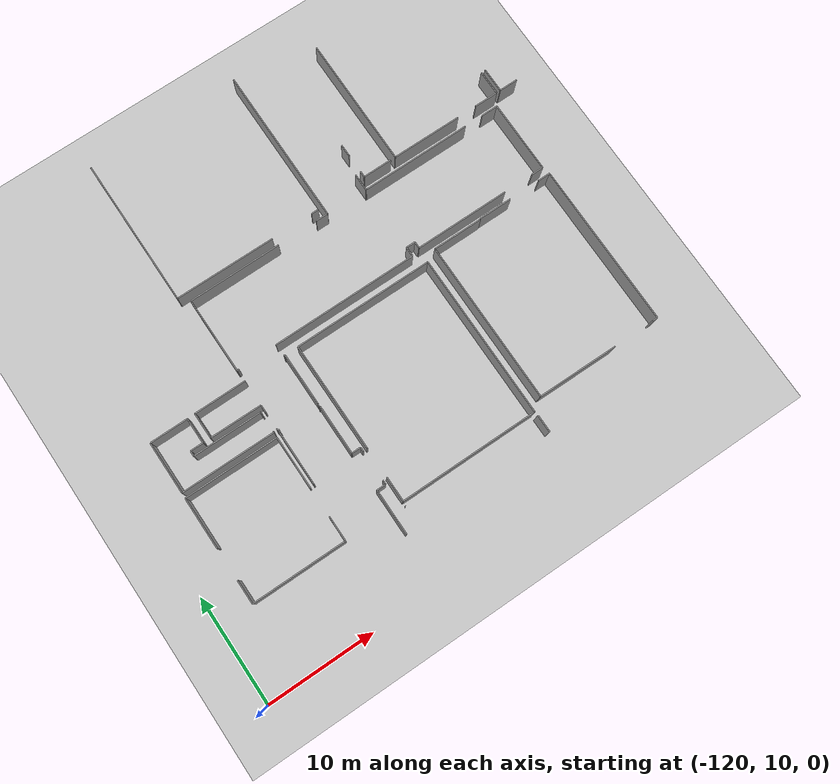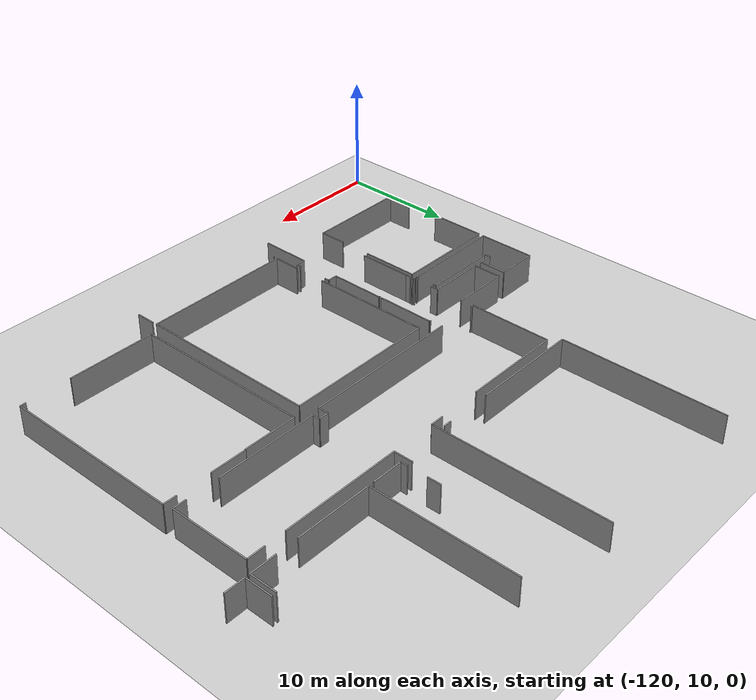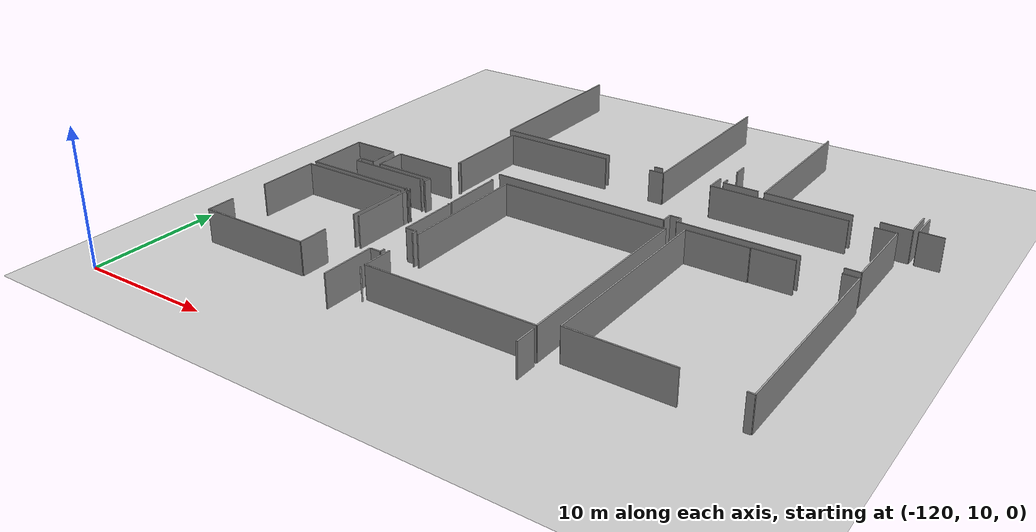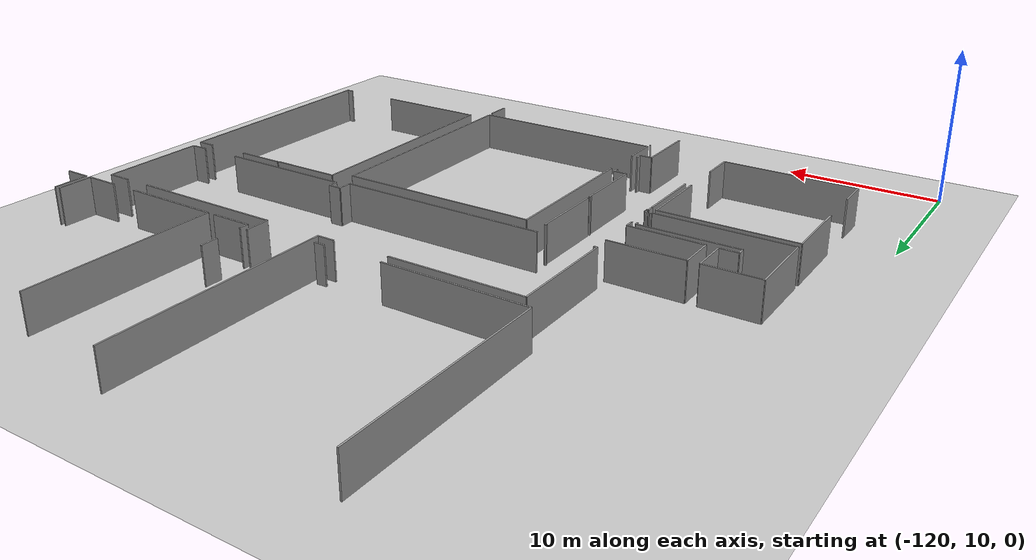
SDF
<sdf version="1.6">
 <world name="default">
  <model name="ground_plane">
   <static>1</static>
   <link name="link">
    <collision name="collision">
     <geometry><plane><normal>0 0 1</normal><size>100 100</size></plane></geometry>
     <surface><friction><ode><mu>100</mu><mu2>50</mu2></ode></friction></surface>
    </collision>
    <visual name="visual">
     <cast_shadows>0</cast_shadows>
     <geometry><plane><normal>0 0 1</normal><size>100 100</size></plane></geometry>
     <material>
      <script><uri>file://media/materials/scripts/gazebo.material</uri><name>Gazebo/Grey</name></script>
     </material>
    </visual>
   </link>
  </model>
  <model name="0510035519_A_40_1_102">
   <static>1</static>
   <link name="Wall_64">
    <collision name="Wall_64_Collision">
     <geometry><box><size>13.7862498411 0.1 2.5</size></box></geometry>
     <pose>6.89312492057 0 1.25 0 0 0</pose>
    </collision>
    <visual name="Wall_64_Visual">
     <pose>6.89312492057 0 1.25 0 0 0</pose>
     <geometry><box><size>13.7862498411 0.1 2.5</size></box></geometry>
     <material>
      <script><uri>file://media/materials/scripts/gazebo.material</uri><name>Gazebo/Grey</name></script>
      <ambient>1 1 1 1</ambient>
     </material>
    </visual>
    <pose>8.18985894014 -27.4416063032 0 0 0 1.57079632679</pose>
   </link>
   <link name="Wall_68">
    <collision name="Wall_68_Collision">
     <geometry><box><size>0.681916380735 0.1 2.5</size></box></geometry>
     <pose>0.340958190367 0 1.25 0 0 0</pose>
    </collision>
    <visual name="Wall_68_Visual">
     <pose>0.340958190367 0 1.25 0 0 0</pose>
     <geometry><box><size>0.681916380735 0.1 2.5</size></box></geometry>
     <material>
      <script><uri>file://media/materials/scripts/gazebo.material</uri><name>Gazebo/Grey</name></script>
      <ambient>1 1 1 1</ambient>
     </material>
    </visual>
    <pose>22.0635404753 -27.4985385691 0 0 0 3.14159265359</pose>
   </link>
   <link name="Wall_69">
    <collision name="Wall_69_Collision">
     <geometry><box><size>9.28089644266 0.1 2.5</size></box></geometry>
     <pose>4.64044822133 0 1.25 0 0 0</pose>
    </collision>
    <visual name="Wall_69_Visual">
     <pose>4.64044822133 0 1.25 0 0 0</pose>
     <geometry><box><size>9.28089644266 0.1 2.5</size></box></geometry>
     <material>
      <script><uri>file://media/materials/scripts/gazebo.material</uri><name>Gazebo/Grey</name></script>
      <ambient>1 1 1 1</ambient>
     </material>
    </visual>
    <pose>17.4705807599 -27.4985385691 0 0 0 3.13545826525</pose>
   </link>
   <link name="Wall_92">
    <collision name="Wall_92_Collision">
     <geometry><box><size>2.69106620918 0.1 2.5</size></box></geometry>
     <pose>1.34553310459 0 1.25 0 0 0</pose>
    </collision>
    <visual name="Wall_92_Visual">
     <pose>1.34553310459 0 1.25 0 0 0</pose>
     <geometry><box><size>2.69106620918 0.1 2.5</size></box></geometry>
     <material>
      <script><uri>file://media/materials/scripts/gazebo.material</uri><name>Gazebo/Grey</name></script>
      <ambient>1 1 1 1</ambient>
     </material>
    </visual>
    <pose>29.5676706062 -27.2514932012 0 0 0 3.14159265359</pose>
   </link>
   <link name="Wall_93">
    <collision name="Wall_93_Collision">
     <geometry><box><size>0.585080696404 0.1 2.5</size></box></geometry>
     <pose>0.292540348202 0 1.25 0 0 0</pose>
    </collision>
    <visual name="Wall_93_Visual">
     <pose>0.292540348202 0 1.25 0 0 0</pose>
     <geometry><box><size>0.585080696404 0.1 2.5</size></box></geometry>
     <material>
      <script><uri>file://media/materials/scripts/gazebo.material</uri><name>Gazebo/Grey</name></script>
      <ambient>1 1 1 1</ambient>
     </material>
    </visual>
    <pose>26.876604397 -27.2514932012 0 0 0 1.57079632679</pose>
   </link>
   <link name="Wall_94">
    <collision name="Wall_94_Collision">
     <geometry><box><size>1.13970960486 0.1 2.5</size></box></geometry>
     <pose>0.569854802431 0 1.25 0 0 0</pose>
    </collision>
    <visual name="Wall_94_Visual">
     <pose>0.569854802431 0 1.25 0 0 0</pose>
     <geometry><box><size>1.13970960486 0.1 2.5</size></box></geometry>
     <material>
      <script><uri>file://media/materials/scripts/gazebo.material</uri><name>Gazebo/Grey</name></script>
      <ambient>1 1 1 1</ambient>
     </material>
    </visual>
    <pose>26.876604397 -24.9830982336 0 0 0 1.57993969375</pose>
   </link>
   <link name="Wall_95">
    <collision name="Wall_95_Collision">
     <geometry><box><size>12.1367391028 0.1 2.5</size></box></geometry>
     <pose>6.0683695514 0 1.25 0 0 0</pose>
    </collision>
    <visual name="Wall_95_Visual">
     <pose>6.0683695514 0 1.25 0 0 0</pose>
     <geometry><box><size>12.1367391028 0.1 2.5</size></box></geometry>
     <material>
      <script><uri>file://media/materials/scripts/gazebo.material</uri><name>Gazebo/Grey</name></script>
      <ambient>1 1 1 1</ambient>
     </material>
    </visual>
    <pose>30.046257466 -27.2578472487 0 0 0 1.57079632679</pose>
   </link>
   <link name="Wall_99">
    <collision name="Wall_99_Collision">
     <geometry><box><size>2.25492438683 0.1 2.5</size></box></geometry>
     <pose>1.12746219342 0 1.25 0 0 0</pose>
    </collision>
    <visual name="Wall_99_Visual">
     <pose>1.12746219342 0 1.25 0 0 0</pose>
     <geometry><box><size>2.25492438683 0.1 2.5</size></box></geometry>
     <material>
      <script><uri>file://media/materials/scripts/gazebo.material</uri><name>Gazebo/Grey</name></script>
      <ambient>1 1 1 1</ambient>
     </material>
    </visual>
    <pose>40.5469564112 -25.0219850044 0 0 0 -1.57079632679</pose>
   </link>
   <link name="Wall_100">
    <collision name="Wall_100_Collision">
     <geometry><box><size>2.19748379718 0.1 2.5</size></box></geometry>
     <pose>1.09874189859 0 1.25 0 0 0</pose>
    </collision>
    <visual name="Wall_100_Visual">
     <pose>1.09874189859 0 1.25 0 0 0</pose>
     <geometry><box><size>2.19748379718 0.1 2.5</size></box></geometry>
     <material>
      <script><uri>file://media/materials/scripts/gazebo.material</uri><name>Gazebo/Grey</name></script>
      <ambient>1 1 1 1</ambient>
     </material>
    </visual>
    <pose>40.5469564112 -27.2769093913 0 0 0 3.14159265359</pose>
   </link>
   <link name="Wall_101">
    <collision name="Wall_101_Collision">
     <geometry><box><size>6.44989473337 0.1 2.5</size></box></geometry>
     <pose>3.22494736669 0 1.25 0 0 0</pose>
    </collision>
    <visual name="Wall_101_Visual">
     <pose>3.22494736669 0 1.25 0 0 0</pose>
     <geometry><box><size>6.44989473337 0.1 2.5</size></box></geometry>
     <material>
      <script><uri>file://media/materials/scripts/gazebo.material</uri><name>Gazebo/Grey</name></script>
      <ambient>1 1 1 1</ambient>
     </material>
    </visual>
    <pose>36.496124031 -27.2769093913 0 0 0 3.13863723011</pose>
   </link>
   <link name="Wall_109">
    <collision name="Wall_109_Collision">
     <geometry><box><size>1.70313889948 0.1 2.5</size></box></geometry>
     <pose>0.851569449739 0 1.25 0 0 0</pose>
    </collision>
    <visual name="Wall_109_Visual">
     <pose>0.851569449739 0 1.25 0 0 0</pose>
     <geometry><box><size>1.70313889948 0.1 2.5</size></box></geometry>
     <material>
      <script><uri>file://media/materials/scripts/gazebo.material</uri><name>Gazebo/Grey</name></script>
      <ambient>1 1 1 1</ambient>
     </material>
    </visual>
    <pose>42.6443004194 -27.2619138391 0 0 0 3.14159265359</pose>
   </link>
   <link name="Wall_110">
    <collision name="Wall_110_Collision">
     <geometry><box><size>2.26356589147 0.1 2.5</size></box></geometry>
     <pose>1.13178294574 0 1.25 0 0 0</pose>
    </collision>
    <visual name="Wall_110_Visual">
     <pose>1.13178294574 0 1.25 0 0 0</pose>
     <geometry><box><size>2.26356589147 0.1 2.5</size></box></geometry>
     <material>
      <script><uri>file://media/materials/scripts/gazebo.material</uri><name>Gazebo/Grey</name></script>
      <ambient>1 1 1 1</ambient>
     </material>
    </visual>
    <pose>40.9411615199 -27.2619138391 0 0 0 1.57079632679</pose>
   </link>
   <link name="Wall_128">
    <collision name="Wall_128_Collision">
     <geometry><box><size>7.06341339433 0.1 2.5</size></box></geometry>
     <pose>3.53170669717 0 1.25 0 0 0</pose>
    </collision>
    <visual name="Wall_128_Visual">
     <pose>3.53170669717 0 1.25 0 0 0</pose>
     <geometry><box><size>7.06341339433 0.1 2.5</size></box></geometry>
     <material>
      <script><uri>file://media/materials/scripts/gazebo.material</uri><name>Gazebo/Grey</name></script>
      <ambient>1 1 1 1</ambient>
     </material>
    </visual>
    <pose>8.99860210954 -35.3053755242 0 0 0 1.57079632679</pose>
   </link>
   <link name="Wall_129">
    <collision name="Wall_129_Collision">
     <geometry><box><size>8.61202185792 0.1 2.5</size></box></geometry>
     <pose>4.30601092896 0 1.25 0 0 0</pose>
    </collision>
    <visual name="Wall_129_Visual">
     <pose>4.30601092896 0 1.25 0 0 0</pose>
     <geometry><box><size>8.61202185792 0.1 2.5</size></box></geometry>
     <material>
      <script><uri>file://media/materials/scripts/gazebo.material</uri><name>Gazebo/Grey</name></script>
      <ambient>1 1 1 1</ambient>
     </material>
    </visual>
    <pose>8.99860210954 -28.2419621299 0 0 0 0.0</pose>
   </link>
   <link name="Wall_130">
    <collision name="Wall_130_Collision">
     <geometry><box><size>1.14271190749 0.1 2.5</size></box></geometry>
     <pose>0.571355953743 0 1.25 0 0 0</pose>
    </collision>
    <visual name="Wall_130_Visual">
     <pose>0.571355953743 0 1.25 0 0 0</pose>
     <geometry><box><size>1.14271190749 0.1 2.5</size></box></geometry>
     <material>
      <script><uri>file://media/materials/scripts/gazebo.material</uri><name>Gazebo/Grey</name></script>
      <ambient>1 1 1 1</ambient>
     </material>
    </visual>
    <pose>21.3602744949 -28.2419621299 0 0 0 0.0</pose>
   </link>
   <link name="Wall_131">
    <collision name="Wall_131_Collision">
     <geometry><box><size>14.6094802389 0.1 2.5</size></box></geometry>
     <pose>7.30474011946 0 1.25 0 0 0</pose>
    </collision>
    <visual name="Wall_131_Visual">
     <pose>7.30474011946 0 1.25 0 0 0</pose>
     <geometry><box><size>14.6094802389 0.1 2.5</size></box></geometry>
     <material>
      <script><uri>file://media/materials/scripts/gazebo.material</uri><name>Gazebo/Grey</name></script>
      <ambient>1 1 1 1</ambient>
     </material>
    </visual>
    <pose>22.5029864023 -28.2419621299 0 0 0 1.57079632679</pose>
   </link>
   <link name="Wall_139">
    <collision name="Wall_139_Collision">
     <geometry><box><size>1.58571610116 0.1 2.5</size></box></geometry>
     <pose>0.792858050578 0 1.25 0 0 0</pose>
    </collision>
    <visual name="Wall_139_Visual">
     <pose>0.792858050578 0 1.25 0 0 0</pose>
     <geometry><box><size>1.58571610116 0.1 2.5</size></box></geometry>
     <material>
      <script><uri>file://media/materials/scripts/gazebo.material</uri><name>Gazebo/Grey</name></script>
      <ambient>1 1 1 1</ambient>
     </material>
    </visual>
    <pose>26.3698055661 -26.7040284661 0 0 0 -1.57079632679</pose>
   </link>
   <link name="Wall_140">
    <collision name="Wall_140_Collision">
     <geometry><box><size>10.1885881306 0.1 2.5</size></box></geometry>
     <pose>5.09429406532 0 1.25 0 0 0</pose>
    </collision>
    <visual name="Wall_140_Visual">
     <pose>5.09429406532 0 1.25 0 0 0</pose>
     <geometry><box><size>10.1885881306 0.1 2.5</size></box></geometry>
     <material>
      <script><uri>file://media/materials/scripts/gazebo.material</uri><name>Gazebo/Grey</name></script>
      <ambient>1 1 1 1</ambient>
     </material>
    </visual>
    <pose>26.3698055661 -28.2897445673 0 0 0 0.0</pose>
   </link>
   <link name="Wall_141">
    <collision name="Wall_141_Collision">
     <geometry><box><size>1.53259626382 0.1 2.5</size></box></geometry>
     <pose>0.76629813191 0 1.25 0 0 0</pose>
    </collision>
    <visual name="Wall_141_Visual">
     <pose>0.76629813191 0 1.25 0 0 0</pose>
     <geometry><box><size>1.53259626382 0.1 2.5</size></box></geometry>
     <material>
      <script><uri>file://media/materials/scripts/gazebo.material</uri><name>Gazebo/Grey</name></script>
      <ambient>1 1 1 1</ambient>
     </material>
    </visual>
    <pose>38.3072817385 -28.2897445673 0 0 0 0.0</pose>
   </link>
   <link name="Wall_142">
    <collision name="Wall_142_Collision">
     <geometry><box><size>6.70733257085 0.1 2.5</size></box></geometry>
     <pose>3.35366628542 0 1.25 0 0 0</pose>
    </collision>
    <visual name="Wall_142_Visual">
     <pose>3.35366628542 0 1.25 0 0 0</pose>
     <geometry><box><size>6.70733257085 0.1 2.5</size></box></geometry>
     <material>
      <script><uri>file://media/materials/scripts/gazebo.material</uri><name>Gazebo/Grey</name></script>
      <ambient>1 1 1 1</ambient>
     </material>
    </visual>
    <pose>39.8398780023 -28.2897445673 0 0 0 -1.57079632679</pose>
   </link>
   <link name="Wall_143">
    <collision name="Wall_143_Collision">
     <geometry><box><size>1.10789172703 0.1 2.5</size></box></geometry>
     <pose>0.553945863515 0 1.25 0 0 0</pose>
    </collision>
    <visual name="Wall_143_Visual">
     <pose>0.553945863515 0 1.25 0 0 0</pose>
     <geometry><box><size>1.10789172703 0.1 2.5</size></box></geometry>
     <material>
      <script><uri>file://media/materials/scripts/gazebo.material</uri><name>Gazebo/Grey</name></script>
      <ambient>1 1 1 1</ambient>
     </material>
    </visual>
    <pose>39.8398780023 -34.9970771381 0 0 0 3.14159265359</pose>
   </link>
   <link name="Wall_144">
    <collision name="Wall_144_Collision">
     <geometry><box><size>8.75689414157 0.1 2.5</size></box></geometry>
     <pose>4.37844707078 0 1.25 0 0 0</pose>
    </collision>
    <visual name="Wall_144_Visual">
     <pose>4.37844707078 0 1.25 0 0 0</pose>
     <geometry><box><size>8.75689414157 0.1 2.5</size></box></geometry>
     <material>
      <script><uri>file://media/materials/scripts/gazebo.material</uri><name>Gazebo/Grey</name></script>
      <ambient>1 1 1 1</ambient>
     </material>
    </visual>
    <pose>35.9224806202 -34.9970771381 0 0 0 3.14159265359</pose>
   </link>
   <link name="Wall_145">
    <collision name="Wall_145_Collision">
     <geometry><box><size>0.616088448342 0.1 2.5</size></box></geometry>
     <pose>0.308044224171 0 1.25 0 0 0</pose>
    </collision>
    <visual name="Wall_145_Visual">
     <pose>0.308044224171 0 1.25 0 0 0</pose>
     <geometry><box><size>0.616088448342 0.1 2.5</size></box></geometry>
     <material>
      <script><uri>file://media/materials/scripts/gazebo.material</uri><name>Gazebo/Grey</name></script>
      <ambient>1 1 1 1</ambient>
     </material>
    </visual>
    <pose>27.1655864786 -34.9970771381 0 0 0 1.57079632679</pose>
   </link>
   <link name="Wall_146">
    <collision name="Wall_146_Collision">
     <geometry><box><size>0.839242597535 0.1 2.5</size></box></geometry>
     <pose>0.419621298767 0 1.25 0 0 0</pose>
    </collision>
    <visual name="Wall_146_Visual">
     <pose>0.419621298767 0 1.25 0 0 0</pose>
     <geometry><box><size>0.839242597535 0.1 2.5</size></box></geometry>
     <material>
      <script><uri>file://media/materials/scripts/gazebo.material</uri><name>Gazebo/Grey</name></script>
      <ambient>1 1 1 1</ambient>
     </material>
    </visual>
    <pose>27.1655864786 -34.3809886898 0 0 0 3.14159265359</pose>
   </link>
   <link name="Wall_147">
    <collision name="Wall_147_Collision">
     <geometry><box><size>0.889058330156 0.1 2.5</size></box></geometry>
     <pose>0.444529165078 0 1.25 0 0 0</pose>
    </collision>
    <visual name="Wall_147_Visual">
     <pose>0.444529165078 0 1.25 0 0 0</pose>
     <geometry><box><size>0.889058330156 0.1 2.5</size></box></geometry>
     <material>
      <script><uri>file://media/materials/scripts/gazebo.material</uri><name>Gazebo/Grey</name></script>
      <ambient>1 1 1 1</ambient>
     </material>
    </visual>
    <pose>26.3263438811 -34.3809886898 0 0 0 -1.57079632679</pose>
   </link>
   <link name="Wall_148">
    <collision name="Wall_148_Collision">
     <geometry><box><size>13.5587749396 0.1 2.5</size></box></geometry>
     <pose>6.77938746982 0 1.25 0 0 0</pose>
    </collision>
    <visual name="Wall_148_Visual">
     <pose>6.77938746982 0 1.25 0 0 0</pose>
     <geometry><box><size>13.5587749396 0.1 2.5</size></box></geometry>
     <material>
      <script><uri>file://media/materials/scripts/gazebo.material</uri><name>Gazebo/Grey</name></script>
      <ambient>1 1 1 1</ambient>
     </material>
    </visual>
    <pose>26.3263438811 -35.27004702 0 0 0 3.14159265359</pose>
   </link>
   <link name="Wall_149">
    <collision name="Wall_149_Collision">
     <geometry><box><size>0.201869999979 0.1 2.5</size></box></geometry>
     <pose>0.100934999989 0 1.25 0 0 0</pose>
    </collision>
    <visual name="Wall_149_Visual">
     <pose>0.100934999989 0 1.25 0 0 0</pose>
     <geometry><box><size>0.201869999979 0.1 2.5</size></box></geometry>
     <material>
      <script><uri>file://media/materials/scripts/gazebo.material</uri><name>Gazebo/Grey</name></script>
      <ambient>1 1 1 1</ambient>
     </material>
    </visual>
    <pose>9.19735671623 -35.27004702 0 0 0 -2.96568057483</pose>
   </link>
   <link name="Wall_150">
    <collision name="Wall_150_Collision">
     <geometry><box><size>15.0369805566 0.1 2.5</size></box></geometry>
     <pose>7.51849027831 0 1.25 0 0 0</pose>
    </collision>
    <visual name="Wall_150_Visual">
     <pose>7.51849027831 0 1.25 0 0 0</pose>
     <geometry><box><size>15.0369805566 0.1 2.5</size></box></geometry>
     <material>
      <script><uri>file://media/materials/scripts/gazebo.material</uri><name>Gazebo/Grey</name></script>
      <ambient>1 1 1 1</ambient>
     </material>
    </visual>
    <pose>28.2114627017 -50.8367009785 0 0 0 1.57079632679</pose>
   </link>
   <link name="Wall_151">
    <collision name="Wall_151_Collision">
     <geometry><box><size>4.62574660058 0.1 2.5</size></box></geometry>
     <pose>2.31287330029 0 1.25 0 0 0</pose>
    </collision>
    <visual name="Wall_151_Visual">
     <pose>2.31287330029 0 1.25 0 0 0</pose>
     <geometry><box><size>4.62574660058 0.1 2.5</size></box></geometry>
     <material>
      <script><uri>file://media/materials/scripts/gazebo.material</uri><name>Gazebo/Grey</name></script>
      <ambient>1 1 1 1</ambient>
     </material>
    </visual>
    <pose>28.2114627017 -35.7997204219 0 0 0 0.0</pose>
   </link>
   <link name="Wall_152">
    <collision name="Wall_152_Collision">
     <geometry><box><size>0.0515948659296 0.1 2.5</size></box></geometry>
     <pose>0.0257974329648 0 1.25 0 0 0</pose>
    </collision>
    <visual name="Wall_152_Visual">
     <pose>0.0257974329648 0 1.25 0 0 0</pose>
     <geometry><box><size>0.0515948659296 0.1 2.5</size></box></geometry>
     <material>
      <script><uri>file://media/materials/scripts/gazebo.material</uri><name>Gazebo/Grey</name></script>
      <ambient>1 1 1 1</ambient>
     </material>
    </visual>
    <pose>32.8372093023 -35.7997204219 0 0 0 1.57079632679</pose>
   </link>
   <link name="Wall_153">
    <collision name="Wall_153_Collision">
     <geometry><box><size>3.09925022239 0.1 2.5</size></box></geometry>
     <pose>1.5496251112 0 1.25 0 0 0</pose>
    </collision>
    <visual name="Wall_153_Visual">
     <pose>1.5496251112 0 1.25 0 0 0</pose>
     <geometry><box><size>3.09925022239 0.1 2.5</size></box></geometry>
     <material>
      <script><uri>file://media/materials/scripts/gazebo.material</uri><name>Gazebo/Grey</name></script>
      <ambient>1 1 1 1</ambient>
     </material>
    </visual>
    <pose>32.8372093023 -35.748125556 0 0 0 0.0</pose>
   </link>
   <link name="Wall_154">
    <collision name="Wall_154_Collision">
     <geometry><box><size>1.11780404117 0.1 2.5</size></box></geometry>
     <pose>0.558902020587 0 1.25 0 0 0</pose>
    </collision>
    <visual name="Wall_154_Visual">
     <pose>0.558902020587 0 1.25 0 0 0</pose>
     <geometry><box><size>1.11780404117 0.1 2.5</size></box></geometry>
     <material>
      <script><uri>file://media/materials/scripts/gazebo.material</uri><name>Gazebo/Grey</name></script>
      <ambient>1 1 1 1</ambient>
     </material>
    </visual>
    <pose>38.8844834159 -35.748125556 0 0 0 0.0</pose>
   </link>
   <link name="Wall_155">
    <collision name="Wall_155_Collision">
     <geometry><box><size>15.1287330029 0.1 2.5</size></box></geometry>
     <pose>7.56436650146 0 1.25 0 0 0</pose>
    </collision>
    <visual name="Wall_155_Visual">
     <pose>7.56436650146 0 1.25 0 0 0</pose>
     <geometry><box><size>15.1287330029 0.1 2.5</size></box></geometry>
     <material>
      <script><uri>file://media/materials/scripts/gazebo.material</uri><name>Gazebo/Grey</name></script>
      <ambient>1 1 1 1</ambient>
     </material>
    </visual>
    <pose>40.0022874571 -35.748125556 0 0 0 -1.57079632679</pose>
   </link>
   <link name="Wall_156">
    <collision name="Wall_156_Collision">
     <geometry><box><size>0.467657898081 0.1 2.5</size></box></geometry>
     <pose>0.233828949041 0 1.25 0 0 0</pose>
    </collision>
    <visual name="Wall_156_Visual">
     <pose>0.233828949041 0 1.25 0 0 0</pose>
     <geometry><box><size>0.467657898081 0.1 2.5</size></box></geometry>
     <material>
      <script><uri>file://media/materials/scripts/gazebo.material</uri><name>Gazebo/Grey</name></script>
      <ambient>1 1 1 1</ambient>
     </material>
    </visual>
    <pose>40.0022874571 -50.8768585589 0 0 0 3.14159265359</pose>
   </link>
   <link name="Wall_157">
    <collision name="Wall_157_Collision">
     <geometry><box><size>7.48187165361 0.1 2.5</size></box></geometry>
     <pose>3.74093582681 0 1.25 0 0 0</pose>
    </collision>
    <visual name="Wall_157_Visual">
     <pose>3.74093582681 0 1.25 0 0 0</pose>
     <geometry><box><size>7.48187165361 0.1 2.5</size></box></geometry>
     <material>
      <script><uri>file://media/materials/scripts/gazebo.material</uri><name>Gazebo/Grey</name></script>
      <ambient>1 1 1 1</ambient>
     </material>
    </visual>
    <pose>35.6932265853 -50.8768585589 0 0 0 3.13622531036</pose>
   </link>
   <link name="Wall_294">
    <collision name="Wall_294_Collision">
     <geometry><box><size>2.37336383276 0.1 2.5</size></box></geometry>
     <pose>1.18668191638 0 1.25 0 0 0</pose>
    </collision>
    <visual name="Wall_294_Visual">
     <pose>1.18668191638 0 1.25 0 0 0</pose>
     <geometry><box><size>2.37336383276 0.1 2.5</size></box></geometry>
     <material>
      <script><uri>file://media/materials/scripts/gazebo.material</uri><name>Gazebo/Grey</name></script>
      <ambient>1 1 1 1</ambient>
     </material>
    </visual>
    <pose>4.26280340577 -38.7556233321 0 0 0 1.57079632679</pose>
   </link>
   <link name="Wall_295">
    <collision name="Wall_295_Collision">
     <geometry><box><size>4.83466768331 0.1 2.5</size></box></geometry>
     <pose>2.41733384166 0 1.25 0 0 0</pose>
    </collision>
    <visual name="Wall_295_Visual">
     <pose>2.41733384166 0 1.25 0 0 0</pose>
     <geometry><box><size>4.83466768331 0.1 2.5</size></box></geometry>
     <material>
      <script><uri>file://media/materials/scripts/gazebo.material</uri><name>Gazebo/Grey</name></script>
      <ambient>1 1 1 1</ambient>
     </material>
    </visual>
    <pose>4.26280340577 -36.3822594993 0 0 0 0.0</pose>
   </link>
   <link name="Wall_296">
    <collision name="Wall_296_Collision">
     <geometry><box><size>0.124539331554 0.1 2.5</size></box></geometry>
     <pose>0.0622696657771 0 1.25 0 0 0</pose>
    </collision>
    <visual name="Wall_296_Visual">
     <pose>0.0622696657771 0 1.25 0 0 0</pose>
     <geometry><box><size>0.124539331554 0.1 2.5</size></box></geometry>
     <material>
      <script><uri>file://media/materials/scripts/gazebo.material</uri><name>Gazebo/Grey</name></script>
      <ambient>1 1 1 1</ambient>
     </material>
    </visual>
    <pose>12.8166221883 -36.3822594993 0 0 0 0.0</pose>
   </link>
   <link name="Wall_297">
    <collision name="Wall_297_Collision">
     <geometry><box><size>4.88245012073 0.1 2.5</size></box></geometry>
     <pose>2.44122506036 0 1.25 0 0 0</pose>
    </collision>
    <visual name="Wall_297_Visual">
     <pose>2.44122506036 0 1.25 0 0 0</pose>
     <geometry><box><size>4.88245012073 0.1 2.5</size></box></geometry>
     <material>
      <script><uri>file://media/materials/scripts/gazebo.material</uri><name>Gazebo/Grey</name></script>
      <ambient>1 1 1 1</ambient>
     </material>
    </visual>
    <pose>12.9411615199 -36.3822594993 0 0 0 -1.57079632679</pose>
   </link>
   <link name="Wall_298">
    <collision name="Wall_298_Collision">
     <geometry><box><size>0.149447197865 0.1 2.5</size></box></geometry>
     <pose>0.0747235989325 0 1.25 0 0 0</pose>
    </collision>
    <visual name="Wall_298_Visual">
     <pose>0.0747235989325 0 1.25 0 0 0</pose>
     <geometry><box><size>0.149447197865 0.1 2.5</size></box></geometry>
     <material>
      <script><uri>file://media/materials/scripts/gazebo.material</uri><name>Gazebo/Grey</name></script>
      <ambient>1 1 1 1</ambient>
     </material>
    </visual>
    <pose>9.21057313509 -41.26470962 0 0 0 3.14159265359</pose>
   </link>
   <link name="Wall_299">
    <collision name="Wall_299_Collision">
     <geometry><box><size>0.178675816495 0.1 2.5</size></box></geometry>
     <pose>0.0893379082476 0 1.25 0 0 0</pose>
    </collision>
    <visual name="Wall_299_Visual">
     <pose>0.0893379082476 0 1.25 0 0 0</pose>
     <geometry><box><size>0.178675816495 0.1 2.5</size></box></geometry>
     <material>
      <script><uri>file://media/materials/scripts/gazebo.material</uri><name>Gazebo/Grey</name></script>
      <ambient>1 1 1 1</ambient>
     </material>
    </visual>
    <pose>9.06112593722 -41.26470962 0 0 0 1.57079632679</pose>
   </link>
   <link name="Wall_300">
    <collision name="Wall_300_Collision">
     <geometry><box><size>0.64277544796 0.1 2.5</size></box></geometry>
     <pose>0.32138772398 0 1.25 0 0 0</pose>
    </collision>
    <visual name="Wall_300_Visual">
     <pose>0.32138772398 0 1.25 0 0 0</pose>
     <geometry><box><size>0.64277544796 0.1 2.5</size></box></geometry>
     <material>
      <script><uri>file://media/materials/scripts/gazebo.material</uri><name>Gazebo/Grey</name></script>
      <ambient>1 1 1 1</ambient>
     </material>
    </visual>
    <pose>9.06112593722 -39.4238149701 0 0 0 1.57079632679</pose>
   </link>
   <link name="Wall_301">
    <collision name="Wall_301_Collision">
     <geometry><box><size>4.79838984437 0.1 2.5</size></box></geometry>
     <pose>2.39919492219 0 1.25 0 0 0</pose>
    </collision>
    <visual name="Wall_301_Visual">
     <pose>2.39919492219 0 1.25 0 0 0</pose>
     <geometry><box><size>4.79838984437 0.1 2.5</size></box></geometry>
     <material>
      <script><uri>file://media/materials/scripts/gazebo.material</uri><name>Gazebo/Grey</name></script>
      <ambient>1 1 1 1</ambient>
     </material>
    </visual>
    <pose>9.06112593722 -38.7810395222 0 0 0 3.1362958124</pose>
   </link>
   <link name="Wall_302">
    <collision name="Wall_302_Collision">
     <geometry><box><size>4.81179311221 0.1 2.5</size></box></geometry>
     <pose>2.40589655611 0 1.25 0 0 0</pose>
    </collision>
    <visual name="Wall_302_Visual">
     <pose>2.40589655611 0 1.25 0 0 0</pose>
     <geometry><box><size>4.81179311221 0.1 2.5</size></box></geometry>
     <material>
      <script><uri>file://media/materials/scripts/gazebo.material</uri><name>Gazebo/Grey</name></script>
      <ambient>1 1 1 1</ambient>
     </material>
    </visual>
    <pose>0.0218579234973 -41.2100648113 0 0 0 1.57079632679</pose>
   </link>
   <link name="Wall_303">
    <collision name="Wall_303_Collision">
     <geometry><box><size>3.51836319736 0.1 2.5</size></box></geometry>
     <pose>1.75918159868 0 1.25 0 0 0</pose>
    </collision>
    <visual name="Wall_303_Visual">
     <pose>1.75918159868 0 1.25 0 0 0</pose>
     <geometry><box><size>3.51836319736 0.1 2.5</size></box></geometry>
     <material>
      <script><uri>file://media/materials/scripts/gazebo.material</uri><name>Gazebo/Grey</name></script>
      <ambient>1 1 1 1</ambient>
     </material>
    </visual>
    <pose>0.0218579234973 -36.3982716991 0 0 0 0.0</pose>
   </link>
   <link name="Wall_304">
    <collision name="Wall_304_Collision">
     <geometry><box><size>2.35150590926 0.1 2.5</size></box></geometry>
     <pose>1.17575295463 0 1.25 0 0 0</pose>
    </collision>
    <visual name="Wall_304_Visual">
     <pose>1.17575295463 0 1.25 0 0 0</pose>
     <geometry><box><size>2.35150590926 0.1 2.5</size></box></geometry>
     <material>
      <script><uri>file://media/materials/scripts/gazebo.material</uri><name>Gazebo/Grey</name></script>
      <ambient>1 1 1 1</ambient>
     </material>
    </visual>
    <pose>3.54022112085 -36.3982716991 0 0 0 -1.57079632679</pose>
   </link>
   <link name="Wall_305">
    <collision name="Wall_305_Collision">
     <geometry><box><size>1.17905705935 0.1 2.5</size></box></geometry>
     <pose>0.589528529673 0 1.25 0 0 0</pose>
    </collision>
    <visual name="Wall_305_Visual">
     <pose>0.589528529673 0 1.25 0 0 0</pose>
     <geometry><box><size>1.17905705935 0.1 2.5</size></box></geometry>
     <material>
      <script><uri>file://media/materials/scripts/gazebo.material</uri><name>Gazebo/Grey</name></script>
      <ambient>1 1 1 1</ambient>
     </material>
    </visual>
    <pose>3.54022112085 -38.7497776083 0 0 0 3.14159265359</pose>
   </link>
   <link name="Wall_306">
    <collision name="Wall_306_Collision">
     <geometry><box><size>0.497140678612 0.1 2.5</size></box></geometry>
     <pose>0.248570339306 0 1.25 0 0 0</pose>
    </collision>
    <visual name="Wall_306_Visual">
     <pose>0.248570339306 0 1.25 0 0 0</pose>
     <geometry><box><size>0.497140678612 0.1 2.5</size></box></geometry>
     <material>
      <script><uri>file://media/materials/scripts/gazebo.material</uri><name>Gazebo/Grey</name></script>
      <ambient>1 1 1 1</ambient>
     </material>
    </visual>
    <pose>2.36116406151 -38.7497776083 0 0 0 -1.57079632679</pose>
   </link>
   <link name="Wall_307">
    <collision name="Wall_307_Collision">
     <geometry><box><size>6.36650146143 0.1 2.5</size></box></geometry>
     <pose>3.18325073072 0 1.25 0 0 0</pose>
    </collision>
    <visual name="Wall_307_Visual">
     <pose>3.18325073072 0 1.25 0 0 0</pose>
     <geometry><box><size>6.36650146143 0.1 2.5</size></box></geometry>
     <material>
      <script><uri>file://media/materials/scripts/gazebo.material</uri><name>Gazebo/Grey</name></script>
      <ambient>1 1 1 1</ambient>
     </material>
    </visual>
    <pose>2.36116406151 -39.2469182869 0 0 0 0.0</pose>
   </link>
   <link name="Wall_308">
    <collision name="Wall_308_Collision">
     <geometry><box><size>0.22925403482 0.1 2.5</size></box></geometry>
     <pose>0.11462701741 0 1.25 0 0 0</pose>
    </collision>
    <visual name="Wall_308_Visual">
     <pose>0.11462701741 0 1.25 0 0 0</pose>
     <geometry><box><size>0.22925403482 0.1 2.5</size></box></geometry>
     <material>
      <script><uri>file://media/materials/scripts/gazebo.material</uri><name>Gazebo/Grey</name></script>
      <ambient>1 1 1 1</ambient>
     </material>
    </visual>
    <pose>8.72766552294 -39.2469182869 0 0 0 -1.57079632679</pose>
   </link>
   <link name="Wall_309">
    <collision name="Wall_309_Collision">
     <geometry><box><size>0.124285169653 0.1 2.5</size></box></geometry>
     <pose>0.0621425848265 0 1.25 0 0 0</pose>
    </collision>
    <visual name="Wall_309_Visual">
     <pose>0.0621425848265 0 1.25 0 0 0</pose>
     <geometry><box><size>0.124285169653 0.1 2.5</size></box></geometry>
     <material>
      <script><uri>file://media/materials/scripts/gazebo.material</uri><name>Gazebo/Grey</name></script>
      <ambient>1 1 1 1</ambient>
     </material>
    </visual>
    <pose>8.72766552294 -41.0931503368 0 0 0 -1.57079632679</pose>
   </link>
   <link name="Wall_310">
    <collision name="Wall_310_Collision">
     <geometry><box><size>8.70581071961 0.1 2.5</size></box></geometry>
     <pose>4.3529053598 0 1.25 0 0 0</pose>
    </collision>
    <visual name="Wall_310_Visual">
     <pose>4.3529053598 0 1.25 0 0 0</pose>
     <geometry><box><size>8.70581071961 0.1 2.5</size></box></geometry>
     <material>
      <script><uri>file://media/materials/scripts/gazebo.material</uri><name>Gazebo/Grey</name></script>
      <ambient>1 1 1 1</ambient>
     </material>
    </visual>
    <pose>8.72766552294 -41.2174355064 0 0 0 3.14074601262</pose>
   </link>
   <link name="Wall_311">
    <collision name="Wall_311_Collision">
     <geometry><box><size>2.17028847376 0.1 2.5</size></box></geometry>
     <pose>1.08514423688 0 1.25 0 0 0</pose>
    </collision>
    <visual name="Wall_311_Visual">
     <pose>1.08514423688 0 1.25 0 0 0</pose>
     <geometry><box><size>2.17028847376 0.1 2.5</size></box></geometry>
     <material>
      <script><uri>file://media/materials/scripts/gazebo.material</uri><name>Gazebo/Grey</name></script>
      <ambient>1 1 1 1</ambient>
     </material>
    </visual>
    <pose>0.0 -51.606557377 0 0 0 1.57079632679</pose>
   </link>
   <link name="Wall_312">
    <collision name="Wall_312_Collision">
     <geometry><box><size>4.74672766552 0.1 2.5</size></box></geometry>
     <pose>2.37336383276 0 1.25 0 0 0</pose>
    </collision>
    <visual name="Wall_312_Visual">
     <pose>2.37336383276 0 1.25 0 0 0</pose>
     <geometry><box><size>4.74672766552 0.1 2.5</size></box></geometry>
     <material>
      <script><uri>file://media/materials/scripts/gazebo.material</uri><name>Gazebo/Grey</name></script>
      <ambient>1 1 1 1</ambient>
     </material>
    </visual>
    <pose>0.0 -46.4582539077 0 0 0 1.57079632679</pose>
   </link>
   <link name="Wall_313">
    <collision name="Wall_313_Collision">
     <geometry><box><size>8.69538696149 0.1 2.5</size></box></geometry>
     <pose>4.34769348075 0 1.25 0 0 0</pose>
    </collision>
    <visual name="Wall_313_Visual">
     <pose>4.34769348075 0 1.25 0 0 0</pose>
     <geometry><box><size>8.69538696149 0.1 2.5</size></box></geometry>
     <material>
      <script><uri>file://media/materials/scripts/gazebo.material</uri><name>Gazebo/Grey</name></script>
      <ambient>1 1 1 1</ambient>
     </material>
    </visual>
    <pose>0.0 -41.7115262422 0 0 0 0.0</pose>
   </link>
   <link name="Wall_314">
    <collision name="Wall_314_Collision">
     <geometry><box><size>4.86160884483 0.1 2.5</size></box></geometry>
     <pose>2.43080442242 0 1.25 0 0 0</pose>
    </collision>
    <visual name="Wall_314_Visual">
     <pose>2.43080442242 0 1.25 0 0 0</pose>
     <geometry><box><size>4.86160884483 0.1 2.5</size></box></geometry>
     <material>
      <script><uri>file://media/materials/scripts/gazebo.material</uri><name>Gazebo/Grey</name></script>
      <ambient>1 1 1 1</ambient>
     </material>
    </visual>
    <pose>8.69538696149 -41.7115262422 0 0 0 -1.57079632679</pose>
   </link>
   <link name="Wall_315">
    <collision name="Wall_315_Collision">
     <geometry><box><size>2.29864023383 0.1 2.5</size></box></geometry>
     <pose>1.14932011691 0 1.25 0 0 0</pose>
    </collision>
    <visual name="Wall_315_Visual">
     <pose>1.14932011691 0 1.25 0 0 0</pose>
     <geometry><box><size>2.29864023383 0.1 2.5</size></box></geometry>
     <material>
      <script><uri>file://media/materials/scripts/gazebo.material</uri><name>Gazebo/Grey</name></script>
      <ambient>1 1 1 1</ambient>
     </material>
    </visual>
    <pose>8.69538696149 -49.316304486 0 0 0 -1.57079632679</pose>
   </link>
   <link name="Wall_316">
    <collision name="Wall_316_Collision">
     <geometry><box><size>8.6953910066 0.1 2.5</size></box></geometry>
     <pose>4.3476955033 0 1.25 0 0 0</pose>
    </collision>
    <visual name="Wall_316_Visual">
     <pose>4.3476955033 0 1.25 0 0 0</pose>
     <geometry><box><size>8.6953910066 0.1 2.5</size></box></geometry>
     <material>
      <script><uri>file://media/materials/scripts/gazebo.material</uri><name>Gazebo/Grey</name></script>
      <ambient>1 1 1 1</ambient>
     </material>
    </visual>
    <pose>8.69538696149 -51.6149447198 0 0 0 3.14062808006</pose>
   </link>
   <link name="Wall_391">
    <collision name="Wall_391_Collision">
     <geometry><box><size>1.6398525861 0.1 2.5</size></box></geometry>
     <pose>0.819926293049 0 1.25 0 0 0</pose>
    </collision>
    <visual name="Wall_391_Visual">
     <pose>0.819926293049 0 1.25 0 0 0</pose>
     <geometry><box><size>1.6398525861 0.1 2.5</size></box></geometry>
     <material>
      <script><uri>file://media/materials/scripts/gazebo.material</uri><name>Gazebo/Grey</name></script>
      <ambient>1 1 1 1</ambient>
     </material>
    </visual>
    <pose>27.1251747363 -51.9758546194 0 0 0 -1.57079632679</pose>
   </link>
   <link name="Wall_397">
    <collision name="Wall_397_Collision">
     <geometry><box><size>0.0123941393725 0.1 2.5</size></box></geometry>
     <pose>0.00619706968623 0 1.25 0 0 0</pose>
    </collision>
    <visual name="Wall_397_Visual">
     <pose>0.00619706968623 0 1.25 0 0 0</pose>
     <geometry><box><size>0.0123941393725 0.1 2.5</size></box></geometry>
     <material>
      <script><uri>file://media/materials/scripts/gazebo.material</uri><name>Gazebo/Grey</name></script>
      <ambient>1 1 1 1</ambient>
     </material>
    </visual>
    <pose>14.1832507307 -51.9700088957 0 0 0 -0.491163598286</pose>
   </link>
   <link name="Wall_398">
    <collision name="Wall_398_Collision">
     <geometry><box><size>12.8954123777 0.1 2.5</size></box></geometry>
     <pose>6.44770618884 0 1.25 0 0 0</pose>
    </collision>
    <visual name="Wall_398_Visual">
     <pose>6.44770618884 0 1.25 0 0 0</pose>
     <geometry><box><size>12.8954123777 0.1 2.5</size></box></geometry>
     <material>
      <script><uri>file://media/materials/scripts/gazebo.material</uri><name>Gazebo/Grey</name></script>
      <ambient>1 1 1 1</ambient>
     </material>
    </visual>
    <pose>14.1789299784 -36.4081840132 0 0 0 0.0</pose>
   </link>
   <link name="Wall_399">
    <collision name="Wall_399_Collision">
     <geometry><box><size>15.1815986784 0.1 2.5</size></box></geometry>
     <pose>7.59079933918 0 1.25 0 0 0</pose>
    </collision>
    <visual name="Wall_399_Visual">
     <pose>7.59079933918 0 1.25 0 0 0</pose>
     <geometry><box><size>15.1815986784 0.1 2.5</size></box></geometry>
     <material>
      <script><uri>file://media/materials/scripts/gazebo.material</uri><name>Gazebo/Grey</name></script>
      <ambient>1 1 1 1</ambient>
     </material>
    </visual>
    <pose>27.0743423561 -36.4081840132 0 0 0 -1.57079632679</pose>
   </link>
   <link name="Wall_400">
    <collision name="Wall_400_Collision">
     <geometry><box><size>12.8562714449 0.1 2.5</size></box></geometry>
     <pose>6.42813572246 0 1.25 0 0 0</pose>
    </collision>
    <visual name="Wall_400_Visual">
     <pose>6.42813572246 0 1.25 0 0 0</pose>
     <geometry><box><size>12.8562714449 0.1 2.5</size></box></geometry>
     <material>
      <script><uri>file://media/materials/scripts/gazebo.material</uri><name>Gazebo/Grey</name></script>
      <ambient>1 1 1 1</ambient>
     </material>
    </visual>
    <pose>27.0743423561 -51.5897826916 0 0 0 3.14159265359</pose>
   </link>
   <link name="Wall_401">
    <collision name="Wall_401_Collision">
     <geometry><box><size>2.29838607193 0.1 2.5</size></box></geometry>
     <pose>1.14919303596 0 1.25 0 0 0</pose>
    </collision>
    <visual name="Wall_401_Visual">
     <pose>1.14919303596 0 1.25 0 0 0</pose>
     <geometry><box><size>2.29838607193 0.1 2.5</size></box></geometry>
     <material>
      <script><uri>file://media/materials/scripts/gazebo.material</uri><name>Gazebo/Grey</name></script>
      <ambient>1 1 1 1</ambient>
     </material>
    </visual>
    <pose>14.2180709112 -51.5897826916 0 0 0 1.57079632679</pose>
   </link>
   <link name="Wall_402">
    <collision name="Wall_402_Collision">
     <geometry><box><size>10.0930991502 0.1 2.5</size></box></geometry>
     <pose>5.04654957508 0 1.25 0 0 0</pose>
    </collision>
    <visual name="Wall_402_Visual">
     <pose>5.04654957508 0 1.25 0 0 0</pose>
     <geometry><box><size>10.0930991502 0.1 2.5</size></box></geometry>
     <material>
      <script><uri>file://media/materials/scripts/gazebo.material</uri><name>Gazebo/Grey</name></script>
      <ambient>1 1 1 1</ambient>
     </material>
    </visual>
    <pose>14.2180709112 -46.501207269 0 0 0 1.57467432604</pose>
   </link>
   <link name="Wall_403">
    <collision name="Wall_403_Collision">
     <geometry><box><size>0.513407040285 0.1 2.5</size></box></geometry>
     <pose>0.256703520142 0 1.25 0 0 0</pose>
    </collision>
    <visual name="Wall_403_Visual">
     <pose>0.256703520142 0 1.25 0 0 0</pose>
     <geometry><box><size>0.513407040285 0.1 2.5</size></box></geometry>
     <material>
      <script><uri>file://media/materials/scripts/gazebo.material</uri><name>Gazebo/Grey</name></script>
      <ambient>1 1 1 1</ambient>
     </material>
    </visual>
    <pose>9.08628796543 -42.0002541619 0 0 0 1.57079632679</pose>
   </link>
   <link name="Wall_404">
    <collision name="Wall_404_Collision">
     <geometry><box><size>0.109289617486 0.1 2.5</size></box></geometry>
     <pose>0.0546448087432 0 1.25 0 0 0</pose>
    </collision>
    <visual name="Wall_404_Visual">
     <pose>0.0546448087432 0 1.25 0 0 0</pose>
     <geometry><box><size>0.109289617486 0.1 2.5</size></box></geometry>
     <material>
      <script><uri>file://media/materials/scripts/gazebo.material</uri><name>Gazebo/Grey</name></script>
      <ambient>1 1 1 1</ambient>
     </material>
    </visual>
    <pose>9.08628796543 -41.4868471216 0 0 0 0.0</pose>
   </link>
   <link name="Wall_405">
    <collision name="Wall_405_Collision">
     <geometry><box><size>0.11462701741 0.1 2.5</size></box></geometry>
     <pose>0.057313508705 0 1.25 0 0 0</pose>
    </collision>
    <visual name="Wall_405_Visual">
     <pose>0.057313508705 0 1.25 0 0 0</pose>
     <geometry><box><size>0.11462701741 0.1 2.5</size></box></geometry>
     <material>
      <script><uri>file://media/materials/scripts/gazebo.material</uri><name>Gazebo/Grey</name></script>
      <ambient>1 1 1 1</ambient>
     </material>
    </visual>
    <pose>12.8557631211 -41.4868471216 0 0 0 0.0</pose>
   </link>
   <link name="Wall_406">
    <collision name="Wall_406_Collision">
     <geometry><box><size>4.63947134325 0.1 2.5</size></box></geometry>
     <pose>2.31973567162 0 1.25 0 0 0</pose>
    </collision>
    <visual name="Wall_406_Visual">
     <pose>2.31973567162 0 1.25 0 0 0</pose>
     <geometry><box><size>4.63947134325 0.1 2.5</size></box></geometry>
     <material>
      <script><uri>file://media/materials/scripts/gazebo.material</uri><name>Gazebo/Grey</name></script>
      <ambient>1 1 1 1</ambient>
     </material>
    </visual>
    <pose>12.9703901385 -41.4868471216 0 0 0 -1.57079632679</pose>
   </link>
   <link name="Wall_407">
    <collision name="Wall_407_Collision">
     <geometry><box><size>0.849917397382 0.1 2.5</size></box></geometry>
     <pose>0.424958698691 0 1.25 0 0 0</pose>
    </collision>
    <visual name="Wall_407_Visual">
     <pose>0.424958698691 0 1.25 0 0 0</pose>
     <geometry><box><size>0.849917397382 0.1 2.5</size></box></geometry>
     <material>
      <script><uri>file://media/materials/scripts/gazebo.material</uri><name>Gazebo/Grey</name></script>
      <ambient>1 1 1 1</ambient>
     </material>
    </visual>
    <pose>12.9703901385 -46.1263184649 0 0 0 0.0</pose>
   </link>
   <link name="Wall_408">
    <collision name="Wall_408_Collision">
     <geometry><box><size>0.400813318084 0.1 2.5</size></box></geometry>
     <pose>0.200406659042 0 1.25 0 0 0</pose>
    </collision>
    <visual name="Wall_408_Visual">
     <pose>0.200406659042 0 1.25 0 0 0</pose>
     <geometry><box><size>0.400813318084 0.1 2.5</size></box></geometry>
     <material>
      <script><uri>file://media/materials/scripts/gazebo.material</uri><name>Gazebo/Grey</name></script>
      <ambient>1 1 1 1</ambient>
     </material>
    </visual>
    <pose>13.8203075359 -46.1263184649 0 0 0 -1.57079632679</pose>
   </link>
   <link name="Wall_409">
    <collision name="Wall_409_Collision">
     <geometry><box><size>0.390138518236 0.1 2.5</size></box></geometry>
     <pose>0.195069259118 0 1.25 0 0 0</pose>
    </collision>
    <visual name="Wall_409_Visual">
     <pose>0.195069259118 0 1.25 0 0 0</pose>
     <geometry><box><size>0.390138518236 0.1 2.5</size></box></geometry>
     <material>
      <script><uri>file://media/materials/scripts/gazebo.material</uri><name>Gazebo/Grey</name></script>
      <ambient>1 1 1 1</ambient>
     </material>
    </visual>
    <pose>13.8203075359 -49.3091879527 0 0 0 -1.57079632679</pose>
   </link>
   <link name="Wall_410">
    <collision name="Wall_410_Collision">
     <geometry><box><size>0.837209302326 0.1 2.5</size></box></geometry>
     <pose>0.418604651163 0 1.25 0 0 0</pose>
    </collision>
    <visual name="Wall_410_Visual">
     <pose>0.418604651163 0 1.25 0 0 0</pose>
     <geometry><box><size>0.837209302326 0.1 2.5</size></box></geometry>
     <material>
      <script><uri>file://media/materials/scripts/gazebo.material</uri><name>Gazebo/Grey</name></script>
      <ambient>1 1 1 1</ambient>
     </material>
    </visual>
    <pose>13.8203075359 -49.699326471 0 0 0 3.14159265359</pose>
   </link>
   <link name="Wall_411">
    <collision name="Wall_411_Collision">
     <geometry><box><size>4.19748379718 0.1 2.5</size></box></geometry>
     <pose>2.09874189859 0 1.25 0 0 0</pose>
    </collision>
    <visual name="Wall_411_Visual">
     <pose>2.09874189859 0 1.25 0 0 0</pose>
     <geometry><box><size>4.19748379718 0.1 2.5</size></box></geometry>
     <material>
      <script><uri>file://media/materials/scripts/gazebo.material</uri><name>Gazebo/Grey</name></script>
      <ambient>1 1 1 1</ambient>
     </material>
    </visual>
    <pose>12.9830982336 -49.699326471 0 0 0 -1.57079632679</pose>
   </link>
   <link name="Wall_434">
    <collision name="Wall_434_Collision">
     <geometry><box><size>4.52687833454 0.1 2.5</size></box></geometry>
     <pose>2.26343916727 0 1.25 0 0 0</pose>
    </collision>
    <visual name="Wall_434_Visual">
     <pose>2.26343916727 0 1.25 0 0 0</pose>
     <geometry><box><size>4.52687833454 0.1 2.5</size></box></geometry>
     <material>
      <script><uri>file://media/materials/scripts/gazebo.material</uri><name>Gazebo/Grey</name></script>
      <ambient>1 1 1 1</ambient>
     </material>
    </visual>
    <pose>9.08882958445 -46.5271317829 0 0 0 1.57135777752</pose>
   </link>
   <pose>-116.6 68.721527513 0 0 0 0</pose>
  </model>
 </world>
</sdf>
